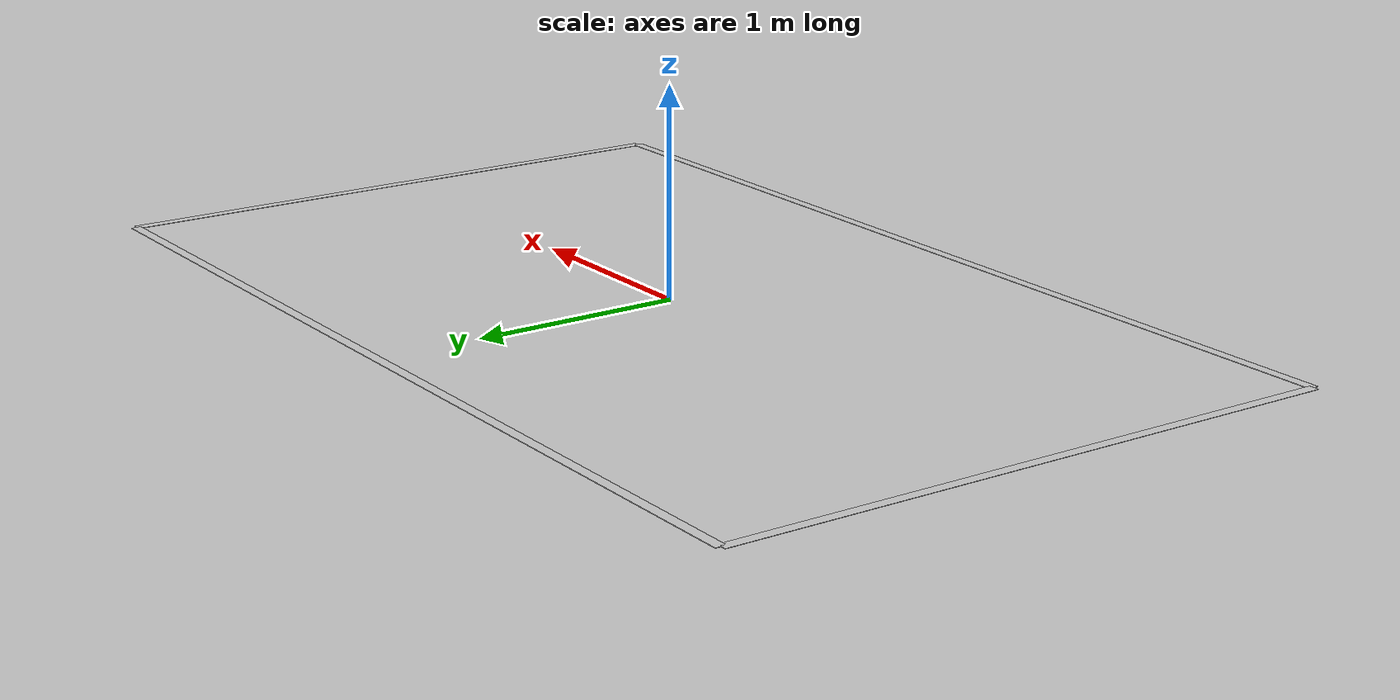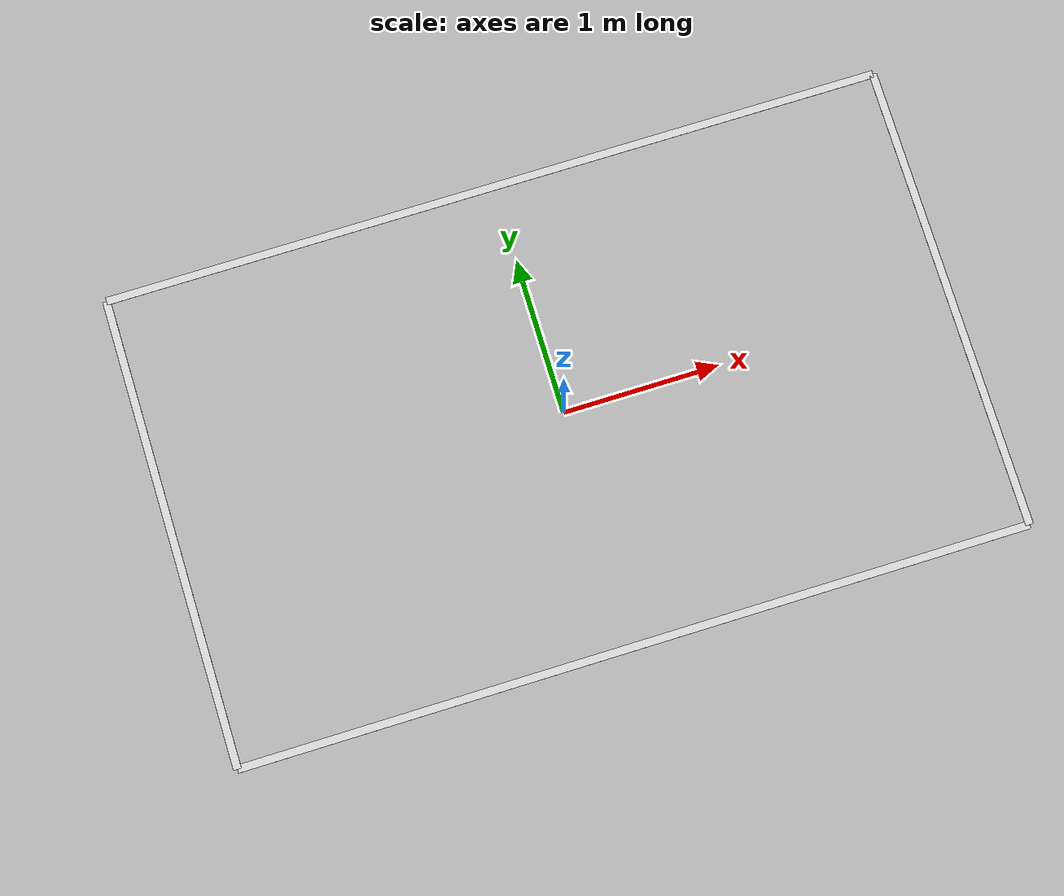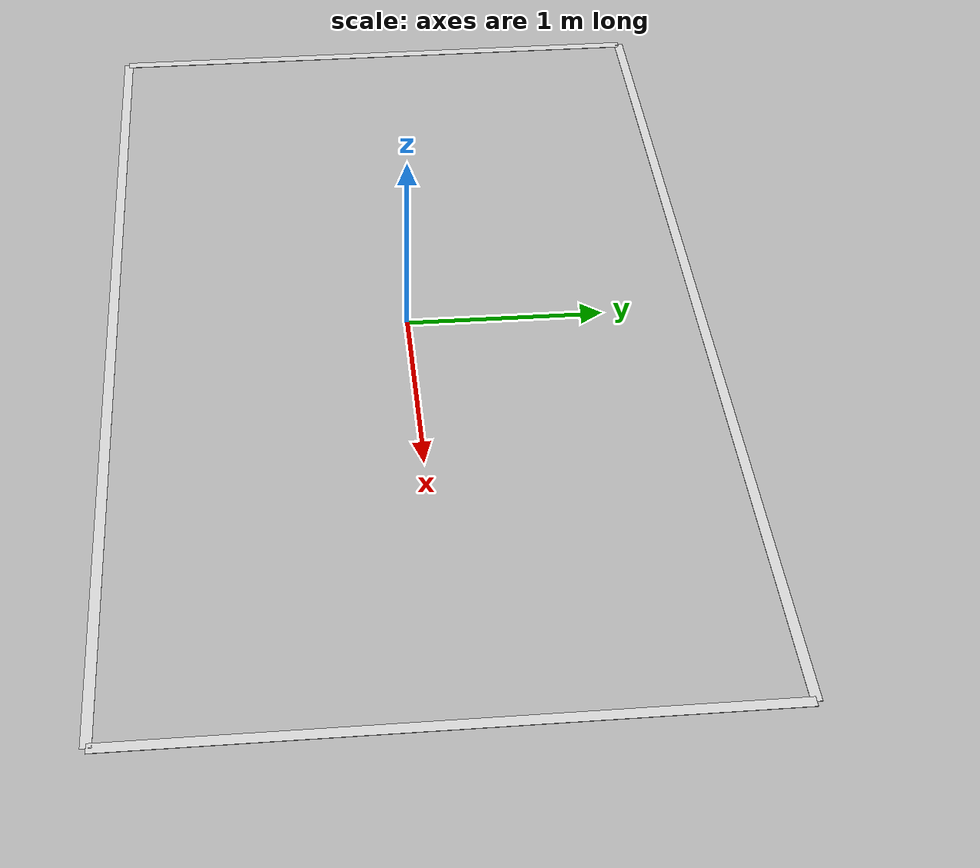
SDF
<?xml version="1.0" ?>
<sdf version="1.7">
  <model name="parking_slot">
    <static>1</static>
    <link name="lines">
      <visual name="front_line">
        <pose>2.5 0 0.001 0 -0 0</pose>
        <geometry>
          <box>
            <size>0.05 3.0 0.002</size>
          </box>
        </geometry>
        <material>
          <script>
            <uri>file://media/materials/scripts/gazebo.material</uri>
            <name>Gazebo/White</name>
          </script>
        </material>
      </visual>
      <visual name="back_line">
        <pose>-2.5 0 0.001 0 -0 0</pose>
        <geometry>
          <box>
            <size>0.05 3.0 0.002</size>
          </box>
        </geometry>
        <material>
          <script>
            <uri>file://media/materials/scripts/gazebo.material</uri>
            <name>Gazebo/White</name>
          </script>
        </material>
      </visual>
      <visual name="left_line">
        <pose>0 1.5 0.001 0 -0 0</pose>
        <geometry>
          <box>
            <size>5 0.05 0.002</size>
          </box>
        </geometry>
        <material>
          <script>
            <uri>file://media/materials/scripts/gazebo.material</uri>
            <name>Gazebo/White</name>
          </script>
        </material>
      </visual>
      <visual name="right_line">
        <pose>0 -1.5 0.001 0 -0 0</pose>
        <geometry>
          <box>
            <size>5 0.05 0.002</size>
          </box>
        </geometry>
        <material>
          <script>
            <uri>file://media/materials/scripts/gazebo.material</uri>
            <name>Gazebo/White</name>
          </script>
        </material>
      </visual>
      <self_collide>0</self_collide>
      <enable_wind>0</enable_wind>
      <kinematic>0</kinematic>
    </link>
  </model>
</sdf>
